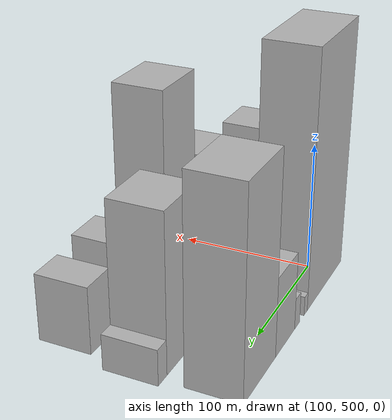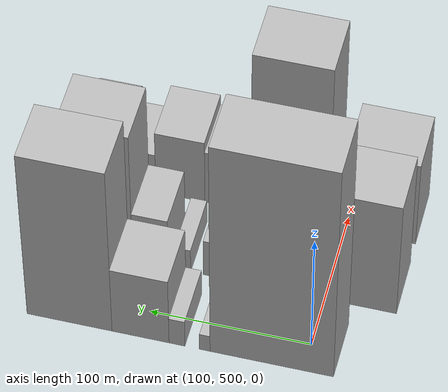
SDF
<sdf version="1.6">
 <world name="default">
  <model name="building_43">
   <static>1</static>
   <pose>100.0000 519.7299 0 0.000000 0.000000 0.000000</pose>
   <link name="link">
    <pose>0 0 96.00 0 0 0</pose>
    <collision name="collision"><geometry><box><size>40.0000 75.9759 192.0000</size></box></geometry></collision>
    <visual name="visual">
     <cast_shadows>0</cast_shadows>
     <geometry><box><size>40.0000 75.9759 192.0000</size></box></geometry>
     <material>
      <script>
       <uri>model://HANNAS_wall/materials/scripts</uri>
       <uri>model://HANNAS_wall/materials/textures</uri>
       <name>vrc/HANNAS_wall</name>
      </script>
     </material>
    </visual>
   </link>
  </model>
  <model name="building_44">
   <static>1</static>
   <pose>100.0000 560.9932 0 0.000000 0.000000 0.000000</pose>
   <link name="link">
    <pose>0 0 7.50 0 0 0</pose>
    <collision name="collision"><geometry><box><size>40.0000 6.5508 15.0000</size></box></geometry></collision>
    <visual name="visual">
     <cast_shadows>0</cast_shadows>
     <geometry><box><size>40.0000 6.5508 15.0000</size></box></geometry>
     <material>
      <script>
       <uri>model://HANNAS_wall/materials/scripts</uri>
       <uri>model://HANNAS_wall/materials/textures</uri>
       <name>vrc/HANNAS_wall</name>
      </script>
     </material>
    </visual>
   </link>
  </model>
  <model name="building_45">
   <static>1</static>
   <pose>100.0000 578.1978 0 0.000000 0.000000 0.000000</pose>
   <link name="link">
    <pose>0 0 12.00 0 0 0</pose>
    <collision name="collision"><geometry><box><size>40.0000 9.8584 24.0000</size></box></geometry></collision>
    <visual name="visual">
     <cast_shadows>0</cast_shadows>
     <geometry><box><size>40.0000 9.8584 24.0000</size></box></geometry>
     <material>
      <script>
       <uri>model://HANNAS_wall/materials/scripts</uri>
       <uri>model://HANNAS_wall/materials/textures</uri>
       <name>vrc/HANNAS_wall</name>
      </script>
     </material>
    </visual>
   </link>
  </model>
  <model name="building_46">
   <static>1</static>
   <pose>100.0000 600.8912 0 0.000000 0.000000 0.000000</pose>
   <link name="link">
    <pose>0 0 30.00 0 0 0</pose>
    <collision name="collision"><geometry><box><size>40.0000 35.5284 60.0000</size></box></geometry></collision>
    <visual name="visual">
     <cast_shadows>0</cast_shadows>
     <geometry><box><size>40.0000 35.5284 60.0000</size></box></geometry>
     <material>
      <script>
       <uri>model://HANNAS_wall/materials/scripts</uri>
       <uri>model://HANNAS_wall/materials/textures</uri>
       <name>vrc/HANNAS_wall</name>
      </script>
     </material>
    </visual>
   </link>
  </model>
  <model name="building_47">
   <static>1</static>
   <pose>100.0000 645.2896 0 0.000000 0.000000 0.000000</pose>
   <link name="link">
    <pose>0 0 75.00 0 0 0</pose>
    <collision name="collision"><geometry><box><size>40.0000 53.2685 150.0000</size></box></geometry></collision>
    <visual name="visual">
     <cast_shadows>0</cast_shadows>
     <geometry><box><size>40.0000 53.2685 150.0000</size></box></geometry>
     <material>
      <script>
       <uri>model://HANNAS_wall/materials/scripts</uri>
       <uri>model://HANNAS_wall/materials/textures</uri>
       <name>vrc/HANNAS_wall</name>
      </script>
     </material>
    </visual>
   </link>
  </model>
  <model name="building_89">
   <static>1</static>
   <pose>155.0000 474.1898 0 0.000000 0.000000 0.000000</pose>
   <link name="link">
    <pose>0 0 51.00 0 0 0</pose>
    <collision name="collision"><geometry><box><size>40.0000 37.2837 102.0000</size></box></geometry></collision>
    <visual name="visual">
     <cast_shadows>0</cast_shadows>
     <geometry><box><size>40.0000 37.2837 102.0000</size></box></geometry>
     <material>
      <script>
       <uri>model://HANNAS_wall/materials/scripts</uri>
       <uri>model://HANNAS_wall/materials/textures</uri>
       <name>vrc/HANNAS_wall</name>
      </script>
     </material>
    </visual>
   </link>
  </model>
  <model name="building_90">
   <static>1</static>
   <pose>155.0000 512.9101 0 0.000000 0.000000 0.000000</pose>
   <link name="link">
    <pose>0 0 37.50 0 0 0</pose>
    <collision name="collision"><geometry><box><size>40.0000 40.1569 75.0000</size></box></geometry></collision>
    <visual name="visual">
     <cast_shadows>0</cast_shadows>
     <geometry><box><size>40.0000 40.1569 75.0000</size></box></geometry>
     <material>
      <script>
       <uri>model://HANNAS_wall/materials/scripts</uri>
       <uri>model://HANNAS_wall/materials/textures</uri>
       <name>vrc/HANNAS_wall</name>
      </script>
     </material>
    </visual>
   </link>
  </model>
  <model name="building_91">
   <static>1</static>
   <pose>155.0000 550.0552 0 0.000000 0.000000 0.000000</pose>
   <link name="link">
    <pose>0 0 15.00 0 0 0</pose>
    <collision name="collision"><geometry><box><size>40.0000 16.1334 30.0000</size></box></geometry></collision>
    <visual name="visual">
     <cast_shadows>0</cast_shadows>
     <geometry><box><size>40.0000 16.1334 30.0000</size></box></geometry>
     <material>
      <script>
       <uri>model://HANNAS_wall/materials/scripts</uri>
       <uri>model://HANNAS_wall/materials/textures</uri>
       <name>vrc/HANNAS_wall</name>
      </script>
     </material>
    </visual>
   </link>
  </model>
  <model name="building_92">
   <static>1</static>
   <pose>155.0000 567.1289 0 0.000000 0.000000 0.000000</pose>
   <link name="link">
    <pose>0 0 16.50 0 0 0</pose>
    <collision name="collision"><geometry><box><size>40.0000 18.0139 33.0000</size></box></geometry></collision>
    <visual name="visual">
     <cast_shadows>0</cast_shadows>
     <geometry><box><size>40.0000 18.0139 33.0000</size></box></geometry>
     <material>
      <script>
       <uri>model://HANNAS_wall/materials/scripts</uri>
       <uri>model://HANNAS_wall/materials/textures</uri>
       <name>vrc/HANNAS_wall</name>
      </script>
     </material>
    </visual>
   </link>
  </model>
  <model name="building_93">
   <static>1</static>
   <pose>155.0000 589.1931 0 0.000000 0.000000 0.000000</pose>
   <link name="link">
    <pose>0 0 10.50 0 0 0</pose>
    <collision name="collision"><geometry><box><size>40.0000 10.1146 21.0000</size></box></geometry></collision>
    <visual name="visual">
     <cast_shadows>0</cast_shadows>
     <geometry><box><size>40.0000 10.1146 21.0000</size></box></geometry>
     <material>
      <script>
       <uri>model://HANNAS_wall/materials/scripts</uri>
       <uri>model://HANNAS_wall/materials/textures</uri>
       <name>vrc/HANNAS_wall</name>
      </script>
     </material>
    </visual>
   </link>
  </model>
  <model name="building_94">
   <static>1</static>
   <pose>155.0000 609.5684 0 0.000000 0.000000 0.000000</pose>
   <link name="link">
    <pose>0 0 22.50 0 0 0</pose>
    <collision name="collision"><geometry><box><size>40.0000 22.6360 45.0000</size></box></geometry></collision>
    <visual name="visual">
     <cast_shadows>0</cast_shadows>
     <geometry><box><size>40.0000 22.6360 45.0000</size></box></geometry>
     <material>
      <script>
       <uri>model://HANNAS_wall/materials/scripts</uri>
       <uri>model://HANNAS_wall/materials/textures</uri>
       <name>vrc/HANNAS_wall</name>
      </script>
     </material>
    </visual>
   </link>
  </model>
  <model name="building_95">
   <static>1</static>
   <pose>155.0000 643.2905 0 0.000000 0.000000 0.000000</pose>
   <link name="link">
    <pose>0 0 58.50 0 0 0</pose>
    <collision name="collision"><geometry><box><size>40.0000 44.8080 117.0000</size></box></geometry></collision>
    <visual name="visual">
     <cast_shadows>0</cast_shadows>
     <geometry><box><size>40.0000 44.8080 117.0000</size></box></geometry>
     <material>
      <script>
       <uri>model://HANNAS_wall/materials/scripts</uri>
       <uri>model://HANNAS_wall/materials/textures</uri>
       <name>vrc/HANNAS_wall</name>
      </script>
     </material>
    </visual>
   </link>
  </model>
  <model name="building_96">
   <static>1</static>
   <pose>155.0000 671.6743 0 0.000000 0.000000 0.000000</pose>
   <link name="link">
    <pose>0 0 13.50 0 0 0</pose>
    <collision name="collision"><geometry><box><size>40.0000 11.9597 27.0000</size></box></geometry></collision>
    <visual name="visual">
     <cast_shadows>0</cast_shadows>
     <geometry><box><size>40.0000 11.9597 27.0000</size></box></geometry>
     <material>
      <script>
       <uri>model://HANNAS_wall/materials/scripts</uri>
       <uri>model://HANNAS_wall/materials/textures</uri>
       <name>vrc/HANNAS_wall</name>
      </script>
     </material>
    </visual>
   </link>
  </model>
  <model name="building_144">
   <static>1</static>
   <pose>210.0000 477.9719 0 0.000000 0.000000 0.000000</pose>
   <link name="link">
    <pose>0 0 37.50 0 0 0</pose>
    <collision name="collision"><geometry><box><size>40.0000 44.6677 75.0000</size></box></geometry></collision>
    <visual name="visual">
     <cast_shadows>0</cast_shadows>
     <geometry><box><size>40.0000 44.6677 75.0000</size></box></geometry>
     <material>
      <script>
       <uri>model://HANNAS_wall/materials/scripts</uri>
       <uri>model://HANNAS_wall/materials/textures</uri>
       <name>vrc/HANNAS_wall</name>
      </script>
     </material>
    </visual>
   </link>
  </model>
  <model name="building_145">
   <static>1</static>
   <pose>210.0000 535.1512 0 0.000000 0.000000 0.000000</pose>
   <link name="link">
    <pose>0 0 73.50 0 0 0</pose>
    <collision name="collision"><geometry><box><size>40.0000 49.6908 147.0000</size></box></geometry></collision>
    <visual name="visual">
     <cast_shadows>0</cast_shadows>
     <geometry><box><size>40.0000 49.6908 147.0000</size></box></geometry>
     <material>
      <script>
       <uri>model://HANNAS_wall/materials/scripts</uri>
       <uri>model://HANNAS_wall/materials/textures</uri>
       <name>vrc/HANNAS_wall</name>
      </script>
     </material>
    </visual>
   </link>
  </model>
  <model name="building_146">
   <static>1</static>
   <pose>210.0000 576.7149 0 0.000000 0.000000 0.000000</pose>
   <link name="link">
    <pose>0 0 24.00 0 0 0</pose>
    <collision name="collision"><geometry><box><size>40.0000 25.4367 48.0000</size></box></geometry></collision>
    <visual name="visual">
     <cast_shadows>0</cast_shadows>
     <geometry><box><size>40.0000 25.4367 48.0000</size></box></geometry>
     <material>
      <script>
       <uri>model://HANNAS_wall/materials/scripts</uri>
       <uri>model://HANNAS_wall/materials/textures</uri>
       <name>vrc/HANNAS_wall</name>
      </script>
     </material>
    </visual>
   </link>
  </model>
  <model name="building_147">
   <static>1</static>
   <pose>210.0000 605.2131 0 0.000000 0.000000 0.000000</pose>
   <link name="link">
    <pose>0 0 28.50 0 0 0</pose>
    <collision name="collision"><geometry><box><size>40.0000 31.5597 57.0000</size></box></geometry></collision>
    <visual name="visual">
     <cast_shadows>0</cast_shadows>
     <geometry><box><size>40.0000 31.5597 57.0000</size></box></geometry>
     <material>
      <script>
       <uri>model://HANNAS_wall/materials/scripts</uri>
       <uri>model://HANNAS_wall/materials/textures</uri>
       <name>vrc/HANNAS_wall</name>
      </script>
     </material>
    </visual>
   </link>
  </model>
  <model name="building_148">
   <static>1</static>
   <pose>210.0000 630.2211 0 0.000000 0.000000 0.000000</pose>
   <link name="link">
    <pose>0 0 18.00 0 0 0</pose>
    <collision name="collision"><geometry><box><size>40.0000 18.4562 36.0000</size></box></geometry></collision>
    <visual name="visual">
     <cast_shadows>0</cast_shadows>
     <geometry><box><size>40.0000 18.4562 36.0000</size></box></geometry>
     <material>
      <script>
       <uri>model://HANNAS_wall/materials/scripts</uri>
       <uri>model://HANNAS_wall/materials/textures</uri>
       <name>vrc/HANNAS_wall</name>
      </script>
     </material>
    </visual>
   </link>
  </model>
  <model name="building_149">
   <static>1</static>
   <pose>210.0000 653.2217 0 0.000000 0.000000 0.000000</pose>
   <link name="link">
    <pose>0 0 25.50 0 0 0</pose>
    <collision name="collision"><geometry><box><size>40.0000 27.5450 51.0000</size></box></geometry></collision>
    <visual name="visual">
     <cast_shadows>0</cast_shadows>
     <geometry><box><size>40.0000 27.5450 51.0000</size></box></geometry>
     <material>
      <script>
       <uri>model://HANNAS_wall/materials/scripts</uri>
       <uri>model://HANNAS_wall/materials/textures</uri>
       <name>vrc/HANNAS_wall</name>
      </script>
     </material>
    </visual>
   </link>
  </model>
 </world>
</sdf>
